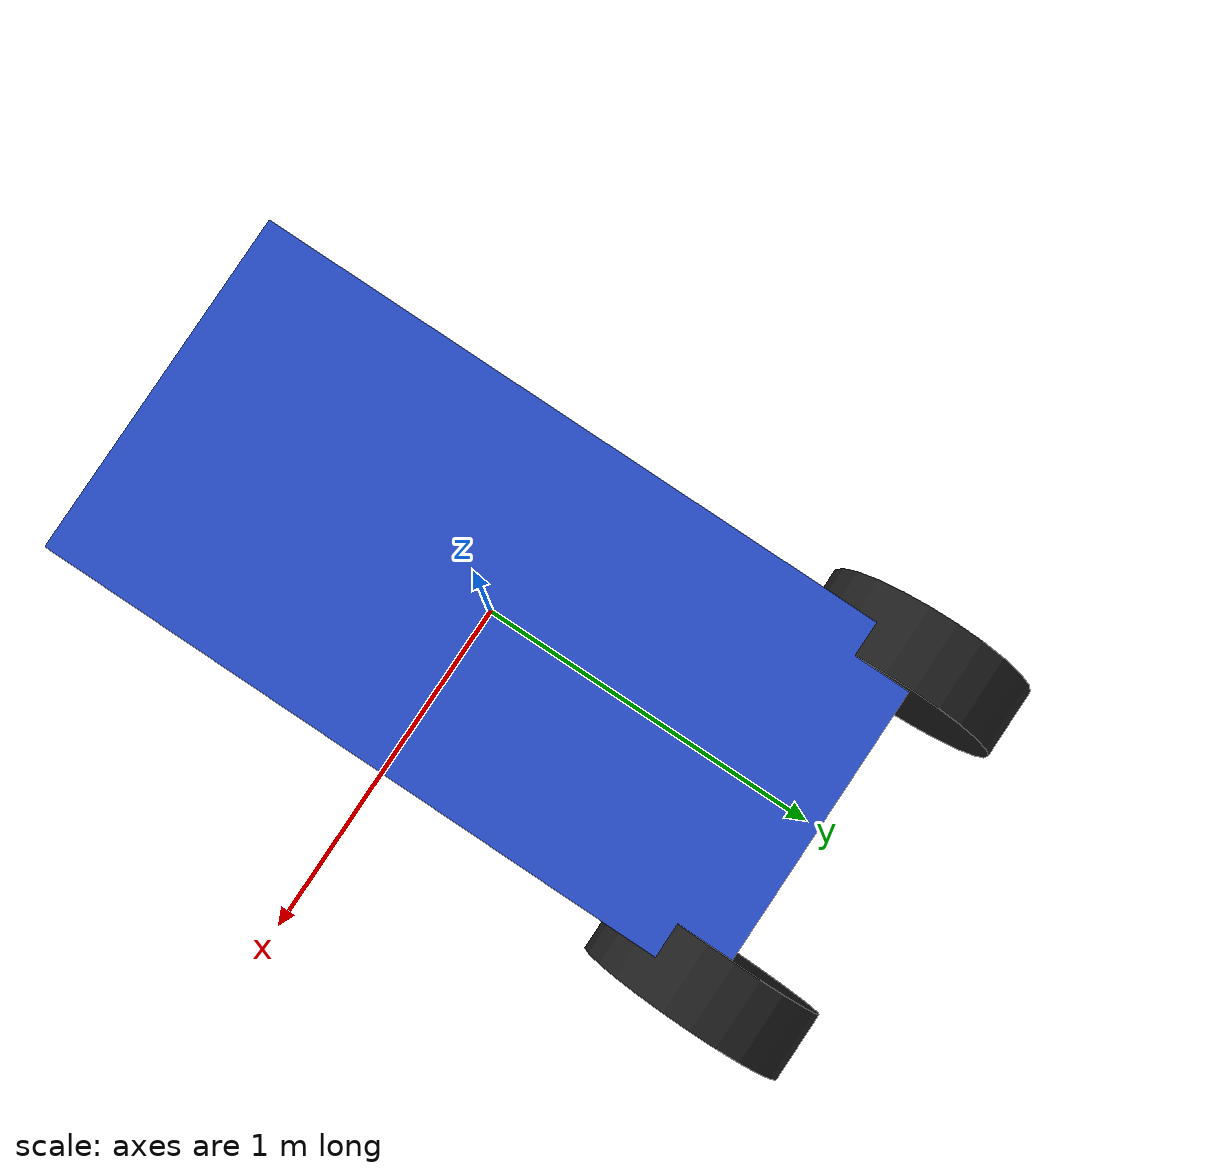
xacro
<?xml version="1.0"?>
<robot name="diff_drive_robot" xmlns:xacro="http://ros.org/wiki/xacro">

  <!-- Константы -->
  <xacro:property name="base_length" value="1"/>
  <xacro:property name="base_width" value="2"/>
  <xacro:property name="base_height" value="0.5"/>
  <xacro:property name="wheel_radius" value="0.3"/>
  <xacro:property name="wheel_length" value="0.2"/>
  <xacro:property name="wheel_mass" value="2.0"/>
  <xacro:property name="base_mass" value="10.0"/>

  <!-- Базовый корпус робота -->
  <link name="base_link">
    <visual>
      <geometry>
        <box size="${base_length} ${base_width} ${base_height}"/>
      </geometry>
      <material name="blue"/>
    </visual>
    <collision>
      <geometry>
        <box size="${base_length} ${base_width} ${base_height}"/>
      </geometry>
    </collision>
    <inertial>
      <mass value="${base_mass}"/>
      <origin rpy="0 0 0" xyz="0 0 0"/>
      <inertia ixx="0.1" ixy="0.0" ixz="0.0" iyy="0.1" iyz="0.0" izz="0.1"/>
    </inertial>
  </link>

  <!-- Левое колесо -->
  <link name="left_wheel">
    <visual>
      <geometry>
        <cylinder length="${wheel_length}" radius="${wheel_radius}"/>
      </geometry>
      <material name="black"/>
    </visual>
    <collision>
      <geometry>
        <cylinder length="${wheel_length}" radius="${wheel_radius}"/>
      </geometry>
    </collision>
    <inertial>
      <mass value="${wheel_mass}"/>
      <origin rpy="0 0 0" xyz="0 0 0"/>
      <inertia ixx="0.01" ixy="0.0" ixz="0.0" iyy="0.01" iyz="0.0" izz="0.01"/>
    </inertial>
  </link>

  <!-- Правое колесо -->
  <link name="right_wheel">
    <visual>
      <geometry>
        <cylinder length="${wheel_length}" radius="${wheel_radius}"/>
      </geometry>
      <material name="black"/>
    </visual>
    <collision>
      <geometry>
        <cylinder length="${wheel_length}" radius="${wheel_radius}"/>
      </geometry>
    </collision>
    <inertial>
      <mass value="${wheel_mass}"/>
      <origin rpy="0 0 0" xyz="0 0 0"/>
      <inertia ixx="0.01" ixy="0.0" ixz="0.0" iyy="0.01" iyz="0.0" izz="0.01"/>
    </inertial>
  </link>

  <!-- Соединения для колес -->
  <joint name="left_wheel_joint" type="continuous">
    <parent link="base_link"/>
    <child link="left_wheel"/>
    <origin xyz="-0.5 ${base_width/2} 0" rpy="0 ${pi/2*-1} 0"/>
    <axis xyz="0 0 1"/>
  </joint>

  <joint name="right_wheel_joint" type="continuous">
    <parent link="base_link"/>
    <child link="right_wheel"/>
    <origin xyz="0.5 ${base_width/2} 0" rpy="0 ${pi/2*1} 0"/>
    <axis xyz="0 0 1"/>
  </joint>

</robot>
